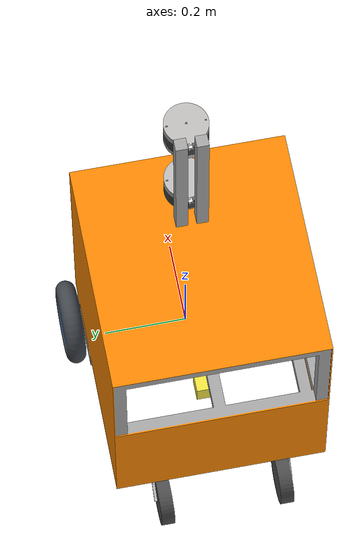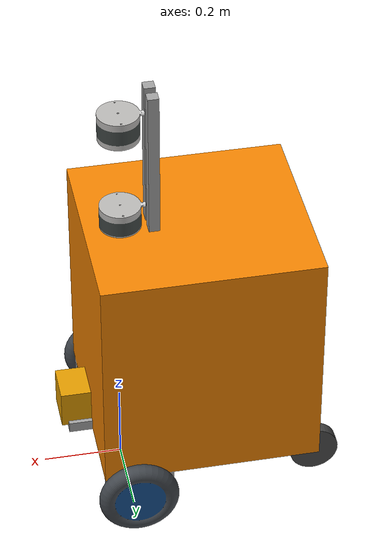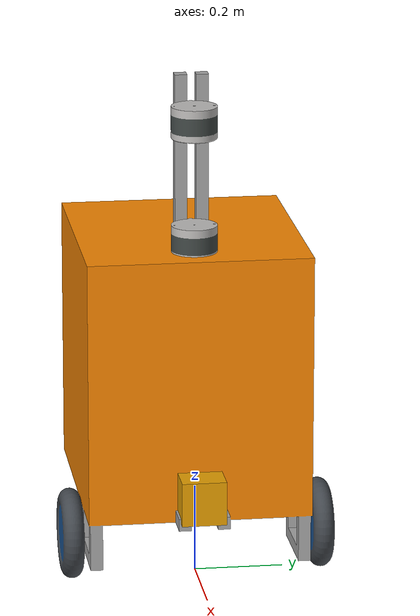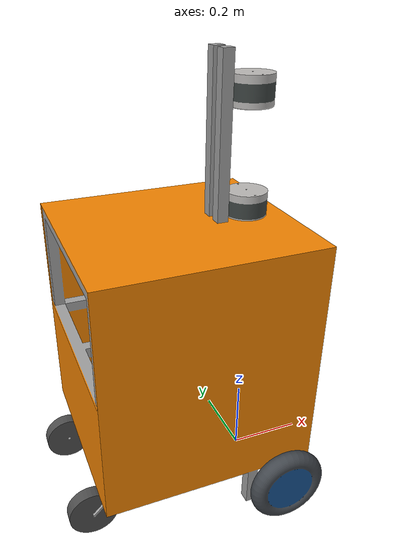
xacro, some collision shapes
<?xml version="1.0"?>
<robot xmlns:xacro="http://www.ros.org/wiki/xacro" name="orange_robot">
  <!--import gazebo reference-->
  <xacro:include filename="$(find orange_description)/xacro/orange_robot.gazebo"/>
  <!--import 2D LiDAR model-->
  <xacro:include filename="$(find orange_description)/xacro/sensors/hokuyo.xacro"/>
  <xacro:sensor_hokuyo name="hokuyo" parent="base_link" min_angle="-1.22" max_angle="1.22" samples="720">
    <origin xyz="0.1075 0.0 0.1085" rpy="0.0 0.0 0.0"/>
  </xacro:sensor_hokuyo>

  <!--import 3D LiDAR model-->
  <!--bringup-->
  <xacro:include filename="$(find orange_description)/xacro/sensors/livox.xacro"/>
  <xacro:sensor_livox name="livox_frame" parent="base_link" min_angle="-2.35619" max_angle="2.35619" samples="720">
    <origin xyz="-0.0185 0.0 0.94" rpy="${pi} 0.0 0.0"/>
  </xacro:sensor_livox>

  <xacro:sensor_livox name="livox_under" parent="base_link" min_angle="-2.35619" max_angle="2.35619" samples="720">
    <origin xyz="-0.0185 0.0 0.67" rpy="${pi} 0.0 0.0"/>
  </xacro:sensor_livox>

  <!--simulation-->

  <!--import imu model-->
  <xacro:include filename="$(find orange_description)/xacro/sensors/imu.xacro"/>
  <xacro:sensor_imu name="imu" parent="base_link" size="0.05 0.05 0.05">
    <origin xyz="-0.253 0.0 0.068" rpy="0.0 0.0 0.0"/>
  </xacro:sensor_imu>
  <!--base footprint-->
  <link name="base_footprint"/>
  <!--base link-->
  <joint name="base_joint" type="fixed">
    <parent link="base_footprint"/>
    <child link="base_link"/>
    <origin xyz="0.0 0.0 0.1015" rpy="0 0 0"/>
  </joint>
  <link name="base_link">
    <visual>
      <origin xyz="0.0775 0.25275 0.6425" rpy="0.0 0.0 0.0"/>
      <geometry>
        <mesh filename="file://$(find orange_description)/meshes/chassis.dae"/>
      </geometry>
    </visual>
    <collision>
      <origin xyz="-0.1995 0.0 0.341" rpy="0.0 0.0 0.0"/>
      <geometry>
        <box size="0.549 0.5055 0.603"/>
      </geometry>
    </collision>
    <inertial>
      <mass value="27.1"/>
      <origin xyz="-0.1995 0.0 0.19" rpy="0.0 0.0 0.0"/>
      <inertia ixx="0.78032248125" ixy="0.0" ixz="0.0" iyy="0.883913925" iyz="0.0" izz="1.25773640625"/>
    </inertial>
  </link>
  <!--caster-->
  <joint name="left_caster_hinge" type="fixed">
    <origin xyz="0.0 0.0 0.0" rpy="0.0 0.0 0.0"/>
    <child link="left_caster_link"/>
    <parent link="base_link"/>
  </joint>
  <joint name="right_caster_hinge" type="fixed">
    <origin xyz="0.0 0.0 0.0" rpy="0.0 0.0 0.0"/>
    <child link="right_caster_link"/>
    <parent link="base_link"/>
  </joint>
  <link name="left_caster_link">
    <visual>
      <origin xyz="-0.4815 0.145 -0.039" rpy="0.0 0.0 0.0"/>
      <geometry>
        <mesh filename="file://$(find orange_description)/meshes/left_caster.dae"/>
      </geometry>
    </visual>
    <collision>
      <origin xyz="-0.4815 0.145 -0.039" rpy="0.0 1.57079632679 1.57079632679"/>
      <geometry>
        <sphere radius="0.0625"/>
      </geometry>
    </collision>
  </link>
  <link name="right_caster_link">
    <visual>
      <origin xyz="-0.4815 -0.145 -0.039" rpy="0.0 0.0 0.0"/>
      <geometry>
        <mesh filename="file://$(find orange_description)/meshes/right_caster.dae"/>
        <sphere radius="0.0625"/>
      </geometry>
    </visual>
    <collision>
      <origin xyz="-0.4815 -0.145 -0.039" rpy="0.0 1.57079632679 1.57079632679"/>
      <geometry>
        <sphere radius="0.0625"/>
      </geometry>
    </collision>
  </link>
  <!--front wheels-->
  <joint type="revolute" name="left_wheel_hinge">
    <origin xyz="0.0 0.2834 0.0" rpy="0.0 0.0 0.0"/>
    <child link="left_wheel">left_wheel</child>
    <parent link="base_link">base_link</parent>
    <axis xyz="0 1 0"/>
    <limit effort="100" velocity="100.0" lower="-5000" upper="5000"/>
  </joint>
  <joint type="revolute" name="right_wheel_hinge">
    <origin xyz="0.0 -0.2834 0.0" rpy="0.0 0.0 0.0"/>
    <child link="right_wheel">right_wheel</child>
    <parent link="base_link">base_link</parent>
    <axis xyz="0 1 0"/>
    <limit effort="100" velocity="100.0" lower="-5000" upper="5000"/>
  </joint>
  <link name="left_wheel">
    <visual name="visual">
      <origin xyz="0.0 0.0 0.0" rpy="0.0 0.0 0.0"/>
      <geometry>
        <mesh filename="file://$(find orange_description)/meshes/front_wheel.dae"/>
      </geometry>
    </visual>
    <collision name="collision">
      <origin xyz="0.0 0.0 0.0" rpy="0.0 1.57079632679 1.57079632679"/>
      <geometry>
        <cylinder length="0.047" radius="0.1015"/>
      </geometry>
    </collision>
    <inertial>
      <mass value="3.4"/>
      <origin xyz="0.0 0.0 0.0" rpy="0.0 1.57079632679 1.57079632679"/>
      <inertia ixx="0.00938279583" ixy="0.0" ixz="0.0" iyy="0.00938279583" iyz="0.0" izz="0.017513825"/>
    </inertial>
  </link>
  <link name="right_wheel">
    <visual name="visual">
      <origin xyz="0.0 0.0 0.0" rpy="0.0 0.0 0.0"/>
      <geometry>
        <mesh filename="file://$(find orange_description)/meshes/front_wheel.dae"/>
      </geometry>
    </visual>
    <collision name="collision">
      <origin xyz="0.0 0.0 0.0" rpy="0.0 1.57079632679 1.57079632679"/>
      <geometry>
        <cylinder length="0.047" radius="0.1015"/>
      </geometry>
    </collision>
    <inertial>
      <mass value="3.4"/>
      <origin xyz="0.0 0.0 0.0" rpy="0.0 1.57079632679 1.57079632679"/>
      <inertia ixx="0.00938279583" ixy="0.0" ixz="0.0" iyy="0.00938279583" iyz="0.0" izz="0.017513825"/>
    </inertial>
  </link>
</robot>

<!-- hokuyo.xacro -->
<robot xmlns:xacro="http://ros.org/wiki/xacro" xmlns:controller="http://playerstage.sourceforge.net/gazebo/xmlschema/#controller" xmlns:interface="http://playerstage.sourceforge.net/gazebo/xmlschema/#interface" name="sensor_hokuyo">
  <xacro:macro name="sensor_hokuyo" params="name parent *origin min_angle max_angle samples">
    <joint name="${name}_joint" type="fixed">
      <xacro:insert_block name="origin"/>
      <axis xyz="0 1 0"/>
      <parent link="${parent}"/>
      <child link="${name}_link"/>
    </joint>
    <link name="${name}_link">
      <visual>
        <origin xyz="0 0 0" rpy="0 0 0"/>
        <geometry>
          <mesh filename="file://$(find orange_description)/meshes/hokuyo.dae"/>
        </geometry>
      </visual>
      <collision>
        <origin xyz="0 0 0" rpy="0 0 0"/>
        <geometry>
          <box size="0.1 0.1 0.1"/>
        </geometry>
      </collision>
      <inertial>
        <mass value="0.0001"/>
        <origin xyz="0 0 0" rpy="0 0 0"/>
        <inertia ixx="0.0001" ixy="0" ixz="0" iyy="0.0001" iyz="0" izz="0.0001"/>
      </inertial>
    </link>
    <gazebo reference="${name}_link">
      <sensor type="ray" name="head_hokuyo_sensor">
        <pose>0 0 0 0 0 0</pose>
        <visualize>false</visualize>
        <update_rate>20</update_rate>
        <ray>
          <scan>
            <horizontal>
              <resolution>1</resolution>
              <samples>${samples}</samples>
              <min_angle>${min_angle}</min_angle>
              <max_angle>${max_angle}</max_angle>
            </horizontal>
          </scan>
          <range>
            <min>0.10</min>
            <max>30.0</max>
            <resolution>0.01</resolution>
          </range>
          <noise>
            <type>gaussian</type>
            <mean>0.0</mean>
            <stddev>0.01</stddev>
          </noise>
        </ray>
        <plugin name="gazebo_ros_hokuyo_controller" filename="libgazebo_ros_ray_sensor.so">
          <ros>
            <remapping>~/out:=hokuyo_scan</remapping>
          </ros>
          <output_type>sensor_msgs/LaserScan</output_type>
          <frame_name>${name}_link</frame_name>
        </plugin>
      </sensor>
    </gazebo>
  </xacro:macro>
</robot>

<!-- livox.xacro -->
<robot xmlns:xacro="http://ros.org/wiki/xacro" xmlns:controller="http://playerstage.sourceforge.net/gazebo/xmlschema/#controller" xmlns:interface="http://playerstage.sourceforge.net/gazebo/xmlschema/#interface" name="sensor_livox">
  <xacro:macro name="sensor_livox" params="name parent *origin min_angle max_angle samples">
    <joint name="${name}_joint" type="fixed">
      <xacro:insert_block name="origin"/>
      <axis xyz="0 1 0"/>
      <parent link="${parent}"/>
      <child link="${name}"/>
    </joint>
    <link name="${name}">
      <visual>
        <origin xyz="0 0 0" rpy="0 0 0"/>
        <geometry>
          <mesh filename="file://$(find orange_description)/meshes/velodyne.dae"/>
        </geometry>
      </visual>
      <collision>
        <origin xyz="0 0 0" rpy="0 0 0"/>
        <geometry>
          <box size="0.1 0.1 0.1"/>
        </geometry>
      </collision>
      <inertial>
        <mass value="0.0001"/>
        <origin xyz="0 0 0" rpy="0 0 0"/>
        <inertia ixx="0.0001" ixy="0" ixz="0" iyy="0.0001" iyz="0" izz="0.0001"/>
      </inertial>
    </link>
    <gazebo reference="${name}">
      <sensor type="ray" name="head_velodyne_sensor">
        <pose>0 0 0 0 0 0</pose>
        <visualize>false</visualize>
        <update_rate>10</update_rate>
        <ray>
          <scan>
            <horizontal>
              <resolution>1</resolution>
              <samples>1875</samples>
              <min_angle>-3.1415926535897931</min_angle>
              <max_angle>3.1415926535897931</max_angle>
            </horizontal>
            <vertical>
              <resolution>1</resolution>
              <samples>16</samples>
              <min_angle>-0.26179938779</min_angle>
              <max_angle>0.26179938779</max_angle>
            </vertical>
          </scan>
          <range>
            <min>0.9</min>
            <max>100</max>
            <resolution>0.001</resolution>
          </range>
          <noise>
            <type>gaussian</type>
            <mean>0.0</mean>
            <stddev>0.0</stddev>
          </noise>
        </ray>
        <plugin name="gazebo_ros_velodyne_controller" filename="libgazebo_ros_velodyne_laser.so">
          <ros>
            <remapping>~/out:=velodyne_points</remapping>
          </ros>
          <frame_name>${name}</frame_name>
          <min_range>0.9</min_range>
          <max_range>100</max_range>
          <gaussian_noise>0.01</gaussian_noise>
        </plugin>
      </sensor>
    </gazebo>
  </xacro:macro>
</robot>

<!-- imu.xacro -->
<robot xmlns:xacro="http://ros.org/wiki/xacro" xmlns:controller="http://playerstage.sourceforge.net/gazebo/xmlschema/#controller" xmlns:interface="http://playerstage.sourceforge.net/gazebo/xmlschema/#interface" name="sensor_imu">
  <xacro:macro name="sensor_imu" params="name parent *origin size">
    <joint name="${name}_joint" type="fixed">
      <xacro:insert_block name="origin"/>
      <axis xyz="1 0 0"/>
      <parent link="${parent}"/>
      <child link="${name}_link"/>
    </joint>
    <link name="${name}_link">
      <visual>
        <origin rpy="0 0 0" xyz="0 0 0"/>
        <geometry>
          <box size="${size}"/>
        </geometry>
      </visual>
      <collision>
        <origin rpy="0 0 0" xyz="0 0 0"/>
        <geometry>
          <box size="${size}"/>
        </geometry>
      </collision>
      <inertial>
        <mass value="0.001"/>
        <origin rpy="0 0 0" xyz="0 0 0"/>
        <inertia ixx="0.0001" ixy="0" ixz="0" iyy="0.000001" iyz="0" izz="0.0001"/>
      </inertial>
    </link>
    <gazebo reference="${name}_link">
      <sensor type="imu" name="imu">
        <always_on>true</always_on>
        <plugin name="gazebo_ros_imu_controller" filename="libgazebo_ros_imu_sensor.so">
          <ros>
            <remapping>~/out:=imu</remapping>
          </ros>
          <frame_name>${name}_link</frame_name>
          <gaussian_noise>0.001</gaussian_noise>
          <xyzOffset>0 0 0</xyzOffset>
          <rpyOffset>0 0 0</rpyOffset>
        </plugin>
      </sensor>
    </gazebo>
  </xacro:macro>
</robot>
